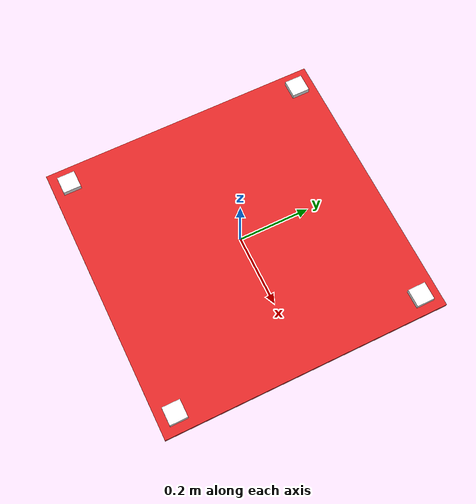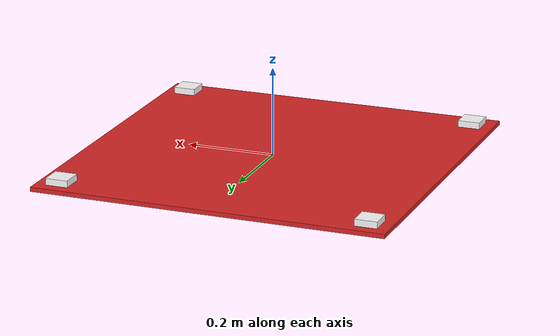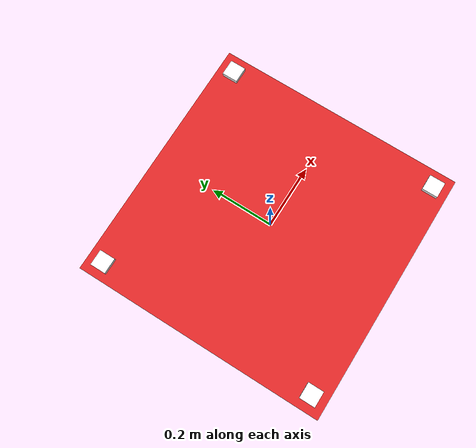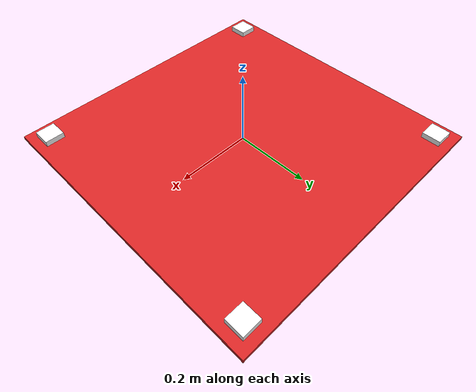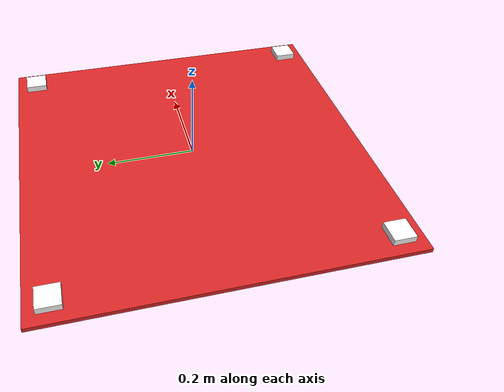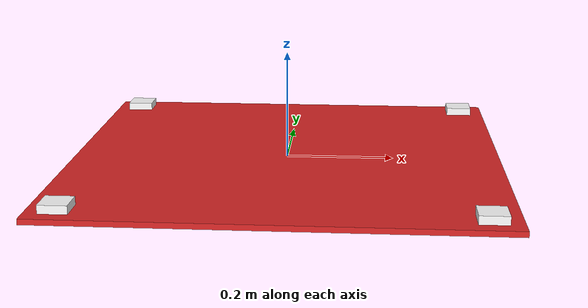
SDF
<?xml version="1.0"?>
<sdf version="1.6">
  <model name="landing_pad_sensor">
    <static>true</static>

    <link name="link">
      <!-- ── Contact collision geometry ────────────────────────────────── -->
      <collision name="collision">
        <geometry>
          <box><size>0.8 0.8 0.01</size></box>
        </geometry>
        <surface>
          <friction>
            <ode><mu>0.8</mu><mu2>0.8</mu2></ode>
          </friction>
          <contact>
            <!-- Allow all bodies to collide with this pad -->
            <collide_bitmask>0xFFFF</collide_bitmask>
          </contact>
        </surface>
      </collision>

      <!-- ── Visual (red square, clearly marks landing zone) ───────────── -->
      <visual name="pad_visual">
        <geometry>
          <box><size>0.8 0.8 0.01</size></box>
        </geometry>
        <material>
          <ambient>0.85 0.15 0.15 0.9</ambient>
          <diffuse>0.85 0.15 0.15 0.9</diffuse>
          <emissive>0.3 0.0 0.0 1</emissive>
        </material>
      </visual>

      <!-- ── Corner markers for visual alignment ───────────────────────── -->
      <visual name="marker_NE">
        <pose>0.35 0.35 0.01 0 0 0</pose>
        <geometry><box><size>0.05 0.05 0.02</size></box></geometry>
        <material><ambient>1 1 1 1</ambient></material>
      </visual>
      <visual name="marker_NW">
        <pose>-0.35 0.35 0.01 0 0 0</pose>
        <geometry><box><size>0.05 0.05 0.02</size></box></geometry>
        <material><ambient>1 1 1 1</ambient></material>
      </visual>
      <visual name="marker_SE">
        <pose>0.35 -0.35 0.01 0 0 0</pose>
        <geometry><box><size>0.05 0.05 0.02</size></box></geometry>
        <material><ambient>1 1 1 1</ambient></material>
      </visual>
      <visual name="marker_SW">
        <pose>-0.35 -0.35 0.01 0 0 0</pose>
        <geometry><box><size>0.05 0.05 0.02</size></box></geometry>
        <material><ambient>1 1 1 1</ambient></material>
      </visual>

      <!-- ── Contact sensor + gazebo_ros_bumper ────────────────────────── -->
      <sensor name="contact_sensor" type="contact">
        <always_on>true</always_on>
        <update_rate>250</update_rate>
        <contact>
          <collision>collision</collision>
        </contact>
        <plugin name="gazebo_ros_bumper" filename="libgazebo_ros_bumper.so">
          <bumperTopicName>/landing_pad/contact</bumperTopicName>
          <frameName>world</frameName>
        </plugin>
      </sensor>
    </link>
  </model>
</sdf>
